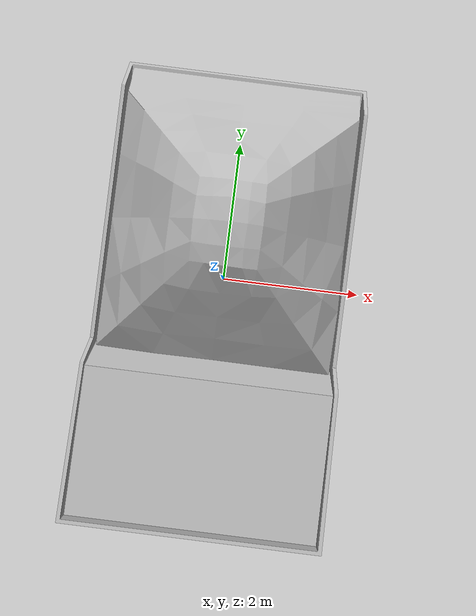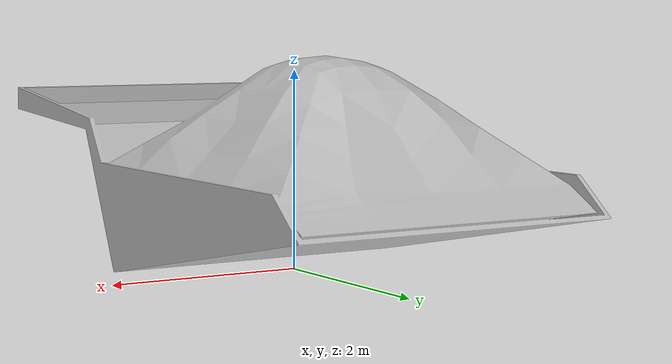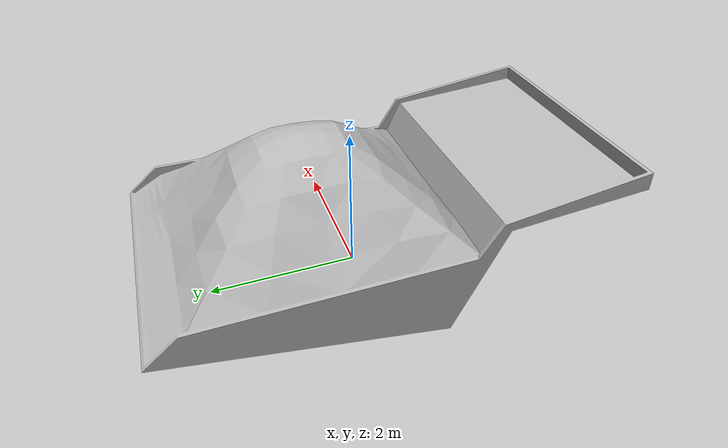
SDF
<?xml version="1.0" ?>
<sdf version="1.6">
  <model name="Truck">
    <pose>0 0 0 0 0 0</pose>
    <link name="link">

      <inertial>
        <mass>1.0</mass>
        <inertia>
          <ixx>0.006667</ixx><ixy>0.000</ixy><ixz>0.000</ixz>
          <iyy>0.03333</iyy><iyz>0.000</iyz>
          <izz>0.03333</izz>
        </inertia>
      </inertial>

      <collision name="collision">
        <geometry>
          <mesh>
            <uri>model://Truck/180tonnes_v3.dae</uri>
          </mesh>
        </geometry>
        <surface>
          <friction>
            <ode>
              <mu>1.0</mu>
              <mu2>1.0</mu2>
            </ode>
          </friction>
          <contact>
            <ode>
              <kp>10000000.0</kp>
              <kd>1.0</kd>
              <min_depth>0.001</min_depth>
              <max_vel>0.1</max_vel>
            </ode>
          </contact>
        </surface>
      </collision>

      <visual name="visual">
        <geometry>
          <mesh>
            <uri>model://Truck/180tonnes_v3.dae</uri>
          </mesh>
        </geometry>
      </visual>

    </link>
  </model>
</sdf>
